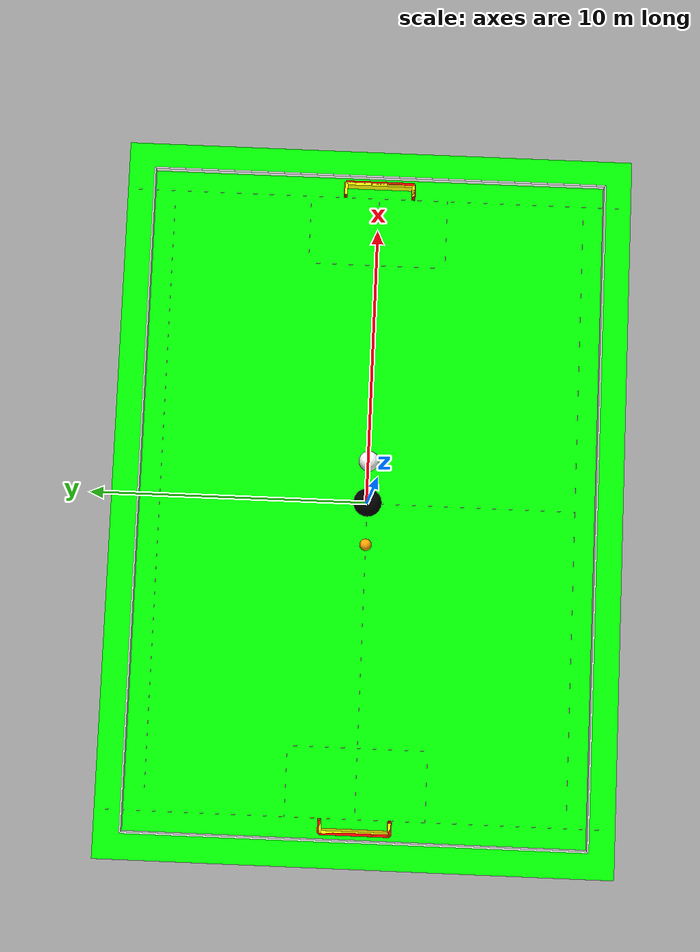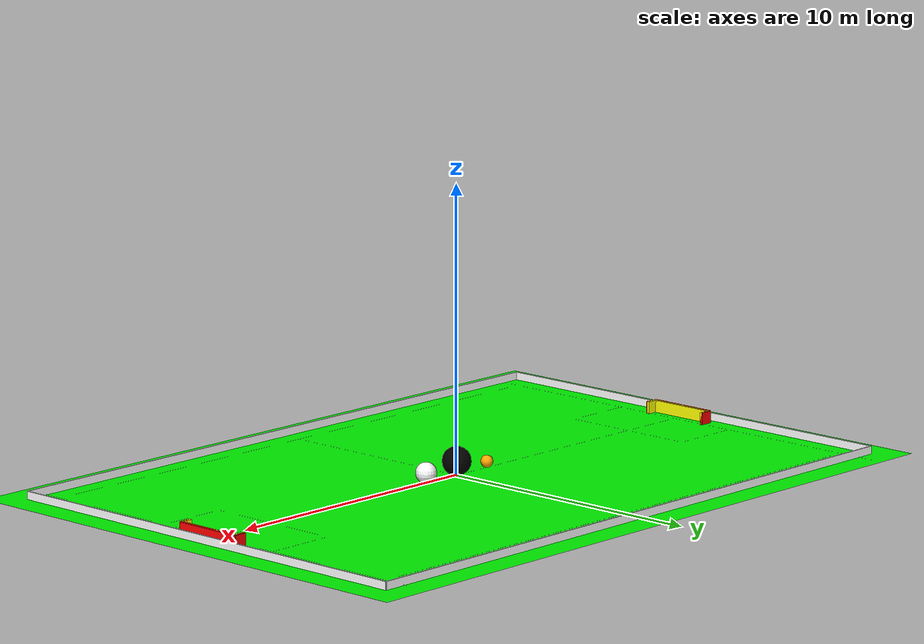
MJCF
<mujoco>
    <asset>
        <material name="floor" texture="checks1" texrepeat="2 2" texuniform="true"/>
        <texture name="checks1" builtin="checker" type='2d' width='256' height='256' rgb1="1 1 1" rgb2="0 0 0" />
        <material name="object" texture="checks1" specular="1" shininess="0.7" reflectance="0.5" rgba="0.8 0.8 0.8 1" />
        <material name="rock" specular="1" shininess="1" reflectance="1" />

    </asset>
    <default>
        <geom condim="3" friction="1 0.5 0.5"/>

    </default>

    <option solver="PGS" iterations="50" tolerance="1e-10"/>

    <worldbody>
        <!--Stadium-->
        <geom name="stadium" type="plane" size="13 9.25 0.025" pos="0 0 0" rgba="0 1 0 1" />

        <!--Boundaries-->
        <body name="boundaries">
            <geom name="boundary_1" type="box" size="12 0.025 0.25" pos="0 8.25 0" rgba="1 1 1 1" />
            <geom name="boundary_2" type="box" size="12 0.025 0.25" pos="0 -8.25 0" rgba="1 1 1 1" />
            <geom name="boundary_3" type="box" size="8.25 0.025 0.25" pos="12 0 0" rgba="1 1 1 1" euler="0 0 90" />
            <geom name="boundary_4" type="box" size="8.25 0.025 0.25" pos="-12 0 0" rgba="1 1 1 1" euler="0 0 90" />
        </body>

        <!--Goal posts-->
        <!--Goal post 1-->
        <body name="Goal_post_1">
            <geom type="box" size="1.25 0.05 0.4" pos="11.7 0 0" rgba="1 0 0 1" euler="0 0 90" />
            <geom type="box" size="0.225 0.05 0.4" pos="11.475 1.25 0" rgba="1 0 0 1" />
            <geom type="box" size="0.225 0.05 0.4" pos="11.475 -1.25 0" rgba="1 0 0 1" />
            <site name="gp_11" type="box" size="1.25 0.05 0.4" pos="11.65 0 0" rgba="1 1 0 1" euler="0 0 90"/>
            <site name="gp_12" type="box" size="0.225 0.05 0.4" pos="11.475 1.225 0" rgba="1 1 0 1" />
            <site name="gp_13" type="box" size="0.225 0.05 0.4" pos="11.475 -1.225 0" rgba="1 1 0 1" />
        </body>

        <!--Goal post 2-->
        <body name="Goal_post_2">
            <geom type="box" size="1.25 0.05 0.4" pos="-11.7 0 0" rgba="1 0 0 1" euler="0 0 90" />
            <geom type="box" size="0.225 0.05 0.4" pos="-11.475 1.25 0" rgba="1 0 0 1" />
            <geom type="box" size="0.225 0.05 0.4" pos="-11.475 -1.25 0" rgba="1 0 0 1" />
            <site name="gp_21" type="box" size="1.25 0.05 0.4" pos="-11.65 0 0" rgba="1 1 0 1" euler="0 0 90"/>
            <site name="gp_22" type="box" size="0.225 0.05 0.4" pos="-11.475 1.225 0" rgba="1 1 0 1" />
            <site name="gp_23" type="box" size="0.225 0.05 0.4" pos="-11.475 -1.225 0" rgba="1 1 0 1" />
        </body>

        <!-- Field Markings -->
        <!-- Field Lines -->
        <body>
        <!-- Touch lines -->
        <!-- Touch lines -->
        <geom name="Touch lines1" type="box" size="0.001 10.75 0.0025" pos="0 7.5 0" rgba="1 1 1 1" euler="90 0 90"/>
        <geom name="Touch lines2" type="box" size="0.001 10.75 0.0025" pos="0 -7.5 0" rgba="1 1 1 1" euler="90 0 90"/>
        <geom name="Touch lines3" type="box" size="0.001 4.5 0.0025" pos="-11.25 -4.5 0" rgba="1 1 1 1" euler="0 90 0"/>
        <geom name="Touch lines4" type="box" size="0.001 4.5 0.0025" pos="-11.25 4.5 0" rgba="1 1 1 1" euler="0 90 0"/>
        <geom name="Touch lines5" type="box" size="0.001 4.5 0.0025" pos="11.25 -4.5 0" rgba="1 1 1 1" euler="0 90 0"/>
        <geom name="Touch lines6" type="box" size="0.001 4.5 0.0025" pos="11.25 4.5 0" rgba="1 1 1 1" euler="0 90 0"/>
            <!-- Goal lines -->
            <geom name="Goal lines1" type="box" size="0.001 1.25 0.0025" pos="11.25 1.5 0" rgba="1 1 0 1" euler="0 90 0"/>
            <geom name="Goal lines2" type="box" size="0.001 1.25 0.0025" pos="-11.25 1.5 0" rgba="1 1 0 1" euler="0 90 0"/>
        </body>

        <!-- Halfway Lines -->
        <body>
            <!-- Halfway Line -->
            <geom name="Halfway Lines 1" type="box" size="0.001 7.5 0.0025" pos="0 0 0" rgba="1 1 1 1" euler="0 90 0"/>

            <!-- Goal-to-Goal Line -->
            <geom name="Goal-to-Goal" type="box" size="0.001 11.25 0.0025" pos="0 0 0" rgba="1 1 1 1" euler="90 0 90"/>
        </body>

        <!-- Defence area -->
        <body>
            <geom name="Defence area1" type="box" size="0.001 1.25 0.0025" pos="10 2.5 0" rgba="1 1 1 1" euler="90 0 90"/>
            <geom name="Defence area2" type="box" size="0.001 1.25 0.0025" pos="10 -2.5 0" rgba="1 1 1 1" euler="90 0 90"/>
            <geom name="Defence area3" type="box" size="0.001 2.5 0.0025" pos="8.75 0 0" rgba="1 1 1 1" euler="0 90 0"/>
        </body>
        <body>
            <geom name="Defence area4" type="box" size="0.001 1.25 0.0025" pos="-10 2.5 0" rgba="1 1 1 1" euler="90 0 90"/>
            <geom name="Defence area5" type="box" size="0.001 1.25 0.0025" pos="-10 -2.5 0" rgba="1 1 1 1" euler="90 0 90"/>
            <geom name="Defence area6" type="box" size="0.001 2.5 0.0025" pos="-8.75 0 0" rgba="1 1 1 1" euler="0 90 0"/>
        </body>

        <!-- Team A -->
        <!-- Player 1 -->
        <body name="agent" pos="-1.5 0 0.215">
            <geom name="sphero1" type="sphere" size="0.215"  rgba = "1 0.647 0 1" mass="5" friction="1" />
            <joint type="free"/>
        </body>

        <!-- Ball -->
        <body name="ball" pos="1.5 0 0.365" >
            <geom name="ball_g" type="sphere" size="0.365"  rgba="1 1 1 1"  mass="1" material="object" friction="0.8" />
            <joint type="free"/>
        </body>

        <!-- Obstacle -->
        <body name="obstacle" pos="0 0 0.5">
            <geom name="obstacle_sphero" type="sphere" size="0.5" rgba="0 0 0 1"  mass="5"  material="rock"  friction="2"/>
            <joint type="free"/>
        </body>

    </worldbody>
</mujoco>
